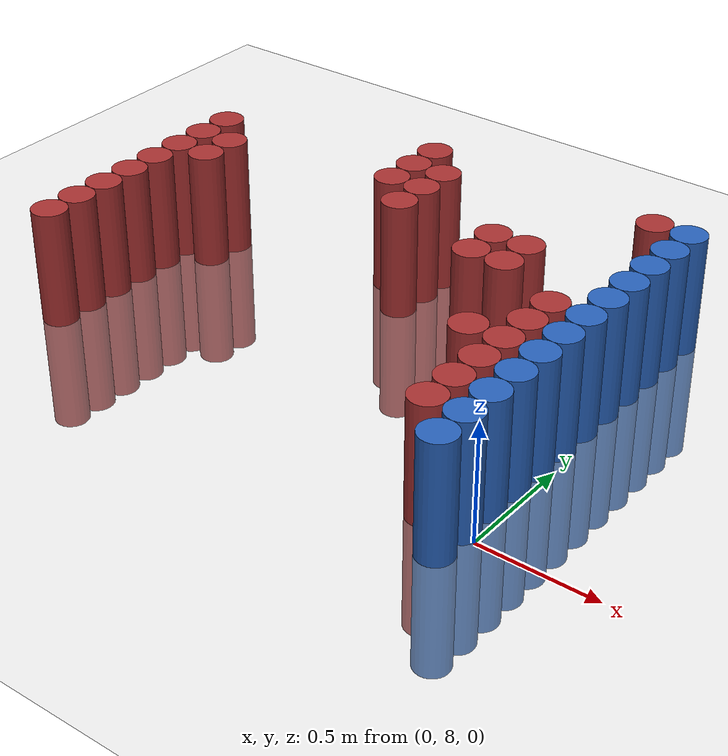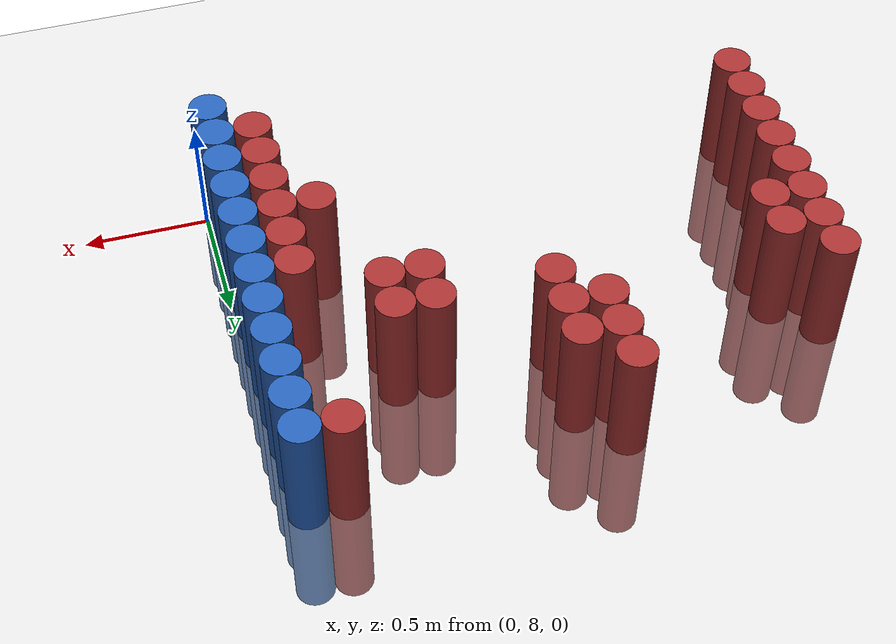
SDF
<sdf version="1.6">
 <world name="default">
  <model name="ground_plane">
   <static>1</static>
   <link name="link">
    <collision name="collision">
     <geometry><plane><normal>0 0 1</normal><size>100 100</size></plane></geometry>
     <surface><friction><ode><mu>100</mu><mu2>50</mu2></ode></friction></surface>
    </collision>
    <visual name="visual">
     <cast_shadows>0</cast_shadows>
     <geometry><plane><normal>0 0 1</normal><size>100 100</size></plane></geometry>
     <material>
      <script><uri>file://media/materials/scripts/gazebo.material</uri><name>Gazebo/Grey</name></script>
     </material>
    </visual>
   </link>
  </model>
  <model name="unit_cylinder_211">
   <static>1</static>
   <pose>-2.175000 8.175000 0.000000 0.000000 0.000000 0.000000</pose>
   <link name="link">
    <inertial>
     <mass>1</mass>
     <inertia><ixx>0.145833</ixx><ixy>0</ixy><ixz>0</ixz><iyy>0.145833</iyy><iyz>0</iyz><izz>0.125</izz></inertia>
    </inertial>
    <collision name="collision">
     <geometry><cylinder><radius>0.075000</radius><length>1</length></cylinder></geometry>
    </collision>
    <visual name="visual">
     <geometry><cylinder><radius>0.075000</radius><length>1</length></cylinder></geometry>
     <material>
      <ambient>0.648000 0.192000 0.192000 1</ambient>
      <diffuse>0.648000 0.192000 0.192000 1</diffuse>
     </material>
     <material>
      <script><name>Gazebo/Grey</name><uri>file://media/materials/scripts/gazebo.material</uri></script>
     </material>
    </visual>
    <sensor name="sensor_contact" type="contact"><contact><collision>collision</collision></contact></sensor>
   </link>
   <plugin filename="gz-sim-touchplugin-system" name="gz::sim::systems::TouchPlugin">
    <target>robot</target>
    <namespace>robot</namespace>
    <time>0.001</time>
    <enabled>true</enabled>
   </plugin>
  </model>
  <model name="unit_cylinder_212">
   <static>1</static>
   <pose>-2.175000 8.325000 0.000000 0.000000 0.000000 0.000000</pose>
   <link name="link">
    <inertial>
     <mass>1</mass>
     <inertia><ixx>0.145833</ixx><ixy>0</ixy><ixz>0</ixz><iyy>0.145833</iyy><iyz>0</iyz><izz>0.125</izz></inertia>
    </inertial>
    <collision name="collision">
     <geometry><cylinder><radius>0.075000</radius><length>1</length></cylinder></geometry>
    </collision>
    <visual name="visual">
     <geometry><cylinder><radius>0.075000</radius><length>1</length></cylinder></geometry>
     <material>
      <ambient>0.648000 0.192000 0.192000 1</ambient>
      <diffuse>0.648000 0.192000 0.192000 1</diffuse>
     </material>
     <material>
      <script><name>Gazebo/Grey</name><uri>file://media/materials/scripts/gazebo.material</uri></script>
     </material>
    </visual>
    <sensor name="sensor_contact" type="contact"><contact><collision>collision</collision></contact></sensor>
   </link>
   <plugin filename="gz-sim-touchplugin-system" name="gz::sim::systems::TouchPlugin">
    <target>robot</target>
    <namespace>robot</namespace>
    <time>0.001</time>
    <enabled>true</enabled>
   </plugin>
  </model>
  <model name="unit_cylinder_213">
   <static>1</static>
   <pose>-2.175000 8.475000 0.000000 0.000000 0.000000 0.000000</pose>
   <link name="link">
    <inertial>
     <mass>1</mass>
     <inertia><ixx>0.145833</ixx><ixy>0</ixy><ixz>0</ixz><iyy>0.145833</iyy><iyz>0</iyz><izz>0.125</izz></inertia>
    </inertial>
    <collision name="collision">
     <geometry><cylinder><radius>0.075000</radius><length>1</length></cylinder></geometry>
    </collision>
    <visual name="visual">
     <geometry><cylinder><radius>0.075000</radius><length>1</length></cylinder></geometry>
     <material>
      <ambient>0.648000 0.192000 0.192000 1</ambient>
      <diffuse>0.648000 0.192000 0.192000 1</diffuse>
     </material>
     <material>
      <script><name>Gazebo/Grey</name><uri>file://media/materials/scripts/gazebo.material</uri></script>
     </material>
    </visual>
    <sensor name="sensor_contact" type="contact"><contact><collision>collision</collision></contact></sensor>
   </link>
   <plugin filename="gz-sim-touchplugin-system" name="gz::sim::systems::TouchPlugin">
    <target>robot</target>
    <namespace>robot</namespace>
    <time>0.001</time>
    <enabled>true</enabled>
   </plugin>
  </model>
  <model name="unit_cylinder_214">
   <static>1</static>
   <pose>-2.175000 8.625000 0.000000 0.000000 0.000000 0.000000</pose>
   <link name="link">
    <inertial>
     <mass>1</mass>
     <inertia><ixx>0.145833</ixx><ixy>0</ixy><ixz>0</ixz><iyy>0.145833</iyy><iyz>0</iyz><izz>0.125</izz></inertia>
    </inertial>
    <collision name="collision">
     <geometry><cylinder><radius>0.075000</radius><length>1</length></cylinder></geometry>
    </collision>
    <visual name="visual">
     <geometry><cylinder><radius>0.075000</radius><length>1</length></cylinder></geometry>
     <material>
      <ambient>0.648000 0.192000 0.192000 1</ambient>
      <diffuse>0.648000 0.192000 0.192000 1</diffuse>
     </material>
     <material>
      <script><name>Gazebo/Grey</name><uri>file://media/materials/scripts/gazebo.material</uri></script>
     </material>
    </visual>
    <sensor name="sensor_contact" type="contact"><contact><collision>collision</collision></contact></sensor>
   </link>
   <plugin filename="gz-sim-touchplugin-system" name="gz::sim::systems::TouchPlugin">
    <target>robot</target>
    <namespace>robot</namespace>
    <time>0.001</time>
    <enabled>true</enabled>
   </plugin>
  </model>
  <model name="unit_cylinder_215">
   <static>1</static>
   <pose>-2.175000 8.775000 0.000000 0.000000 0.000000 0.000000</pose>
   <link name="link">
    <inertial>
     <mass>1</mass>
     <inertia><ixx>0.145833</ixx><ixy>0</ixy><ixz>0</ixz><iyy>0.145833</iyy><iyz>0</iyz><izz>0.125</izz></inertia>
    </inertial>
    <collision name="collision">
     <geometry><cylinder><radius>0.075000</radius><length>1</length></cylinder></geometry>
    </collision>
    <visual name="visual">
     <geometry><cylinder><radius>0.075000</radius><length>1</length></cylinder></geometry>
     <material>
      <ambient>0.648000 0.192000 0.192000 1</ambient>
      <diffuse>0.648000 0.192000 0.192000 1</diffuse>
     </material>
     <material>
      <script><name>Gazebo/Grey</name><uri>file://media/materials/scripts/gazebo.material</uri></script>
     </material>
    </visual>
    <sensor name="sensor_contact" type="contact"><contact><collision>collision</collision></contact></sensor>
   </link>
   <plugin filename="gz-sim-touchplugin-system" name="gz::sim::systems::TouchPlugin">
    <target>robot</target>
    <namespace>robot</namespace>
    <time>0.001</time>
    <enabled>true</enabled>
   </plugin>
  </model>
  <model name="unit_cylinder_216">
   <static>1</static>
   <pose>-2.175000 8.925000 0.000000 0.000000 0.000000 0.000000</pose>
   <link name="link">
    <inertial>
     <mass>1</mass>
     <inertia><ixx>0.145833</ixx><ixy>0</ixy><ixz>0</ixz><iyy>0.145833</iyy><iyz>0</iyz><izz>0.125</izz></inertia>
    </inertial>
    <collision name="collision">
     <geometry><cylinder><radius>0.075000</radius><length>1</length></cylinder></geometry>
    </collision>
    <visual name="visual">
     <geometry><cylinder><radius>0.075000</radius><length>1</length></cylinder></geometry>
     <material>
      <ambient>0.648000 0.192000 0.192000 1</ambient>
      <diffuse>0.648000 0.192000 0.192000 1</diffuse>
     </material>
     <material>
      <script><name>Gazebo/Grey</name><uri>file://media/materials/scripts/gazebo.material</uri></script>
     </material>
    </visual>
    <sensor name="sensor_contact" type="contact"><contact><collision>collision</collision></contact></sensor>
   </link>
   <plugin filename="gz-sim-touchplugin-system" name="gz::sim::systems::TouchPlugin">
    <target>robot</target>
    <namespace>robot</namespace>
    <time>0.001</time>
    <enabled>true</enabled>
   </plugin>
  </model>
  <model name="unit_cylinder_217">
   <static>1</static>
   <pose>-2.175000 9.075000 0.000000 0.000000 0.000000 0.000000</pose>
   <link name="link">
    <inertial>
     <mass>1</mass>
     <inertia><ixx>0.145833</ixx><ixy>0</ixy><ixz>0</ixz><iyy>0.145833</iyy><iyz>0</iyz><izz>0.125</izz></inertia>
    </inertial>
    <collision name="collision">
     <geometry><cylinder><radius>0.075000</radius><length>1</length></cylinder></geometry>
    </collision>
    <visual name="visual">
     <geometry><cylinder><radius>0.075000</radius><length>1</length></cylinder></geometry>
     <material>
      <ambient>0.648000 0.192000 0.192000 1</ambient>
      <diffuse>0.648000 0.192000 0.192000 1</diffuse>
     </material>
     <material>
      <script><name>Gazebo/Grey</name><uri>file://media/materials/scripts/gazebo.material</uri></script>
     </material>
    </visual>
    <sensor name="sensor_contact" type="contact"><contact><collision>collision</collision></contact></sensor>
   </link>
   <plugin filename="gz-sim-touchplugin-system" name="gz::sim::systems::TouchPlugin">
    <target>robot</target>
    <namespace>robot</namespace>
    <time>0.001</time>
    <enabled>true</enabled>
   </plugin>
  </model>
  <model name="unit_cylinder_218">
   <static>1</static>
   <pose>-2.175000 9.225000 0.000000 0.000000 0.000000 0.000000</pose>
   <link name="link">
    <inertial>
     <mass>1</mass>
     <inertia><ixx>0.145833</ixx><ixy>0</ixy><ixz>0</ixz><iyy>0.145833</iyy><iyz>0</iyz><izz>0.125</izz></inertia>
    </inertial>
    <collision name="collision">
     <geometry><cylinder><radius>0.075000</radius><length>1</length></cylinder></geometry>
    </collision>
    <visual name="visual">
     <geometry><cylinder><radius>0.075000</radius><length>1</length></cylinder></geometry>
     <material>
      <ambient>0.648000 0.192000 0.192000 1</ambient>
      <diffuse>0.648000 0.192000 0.192000 1</diffuse>
     </material>
     <material>
      <script><name>Gazebo/Grey</name><uri>file://media/materials/scripts/gazebo.material</uri></script>
     </material>
    </visual>
    <sensor name="sensor_contact" type="contact"><contact><collision>collision</collision></contact></sensor>
   </link>
   <plugin filename="gz-sim-touchplugin-system" name="gz::sim::systems::TouchPlugin">
    <target>robot</target>
    <namespace>robot</namespace>
    <time>0.001</time>
    <enabled>true</enabled>
   </plugin>
  </model>
  <model name="unit_cylinder_221">
   <static>1</static>
   <pose>-2.025000 8.925000 0.000000 0.000000 0.000000 0.000000</pose>
   <link name="link">
    <inertial>
     <mass>1</mass>
     <inertia><ixx>0.145833</ixx><ixy>0</ixy><ixz>0</ixz><iyy>0.145833</iyy><iyz>0</iyz><izz>0.125</izz></inertia>
    </inertial>
    <collision name="collision">
     <geometry><cylinder><radius>0.075000</radius><length>1</length></cylinder></geometry>
    </collision>
    <visual name="visual">
     <geometry><cylinder><radius>0.075000</radius><length>1</length></cylinder></geometry>
     <material>
      <ambient>0.648000 0.192000 0.192000 1</ambient>
      <diffuse>0.648000 0.192000 0.192000 1</diffuse>
     </material>
     <material>
      <script><name>Gazebo/Grey</name><uri>file://media/materials/scripts/gazebo.material</uri></script>
     </material>
    </visual>
    <sensor name="sensor_contact" type="contact"><contact><collision>collision</collision></contact></sensor>
   </link>
   <plugin filename="gz-sim-touchplugin-system" name="gz::sim::systems::TouchPlugin">
    <target>robot</target>
    <namespace>robot</namespace>
    <time>0.001</time>
    <enabled>true</enabled>
   </plugin>
  </model>
  <model name="unit_cylinder_222">
   <static>1</static>
   <pose>-2.025000 9.075000 0.000000 0.000000 0.000000 0.000000</pose>
   <link name="link">
    <inertial>
     <mass>1</mass>
     <inertia><ixx>0.145833</ixx><ixy>0</ixy><ixz>0</ixz><iyy>0.145833</iyy><iyz>0</iyz><izz>0.125</izz></inertia>
    </inertial>
    <collision name="collision">
     <geometry><cylinder><radius>0.075000</radius><length>1</length></cylinder></geometry>
    </collision>
    <visual name="visual">
     <geometry><cylinder><radius>0.075000</radius><length>1</length></cylinder></geometry>
     <material>
      <ambient>0.648000 0.192000 0.192000 1</ambient>
      <diffuse>0.648000 0.192000 0.192000 1</diffuse>
     </material>
     <material>
      <script><name>Gazebo/Grey</name><uri>file://media/materials/scripts/gazebo.material</uri></script>
     </material>
    </visual>
    <sensor name="sensor_contact" type="contact"><contact><collision>collision</collision></contact></sensor>
   </link>
   <plugin filename="gz-sim-touchplugin-system" name="gz::sim::systems::TouchPlugin">
    <target>robot</target>
    <namespace>robot</namespace>
    <time>0.001</time>
    <enabled>true</enabled>
   </plugin>
  </model>
  <model name="unit_cylinder_235">
   <static>1</static>
   <pose>-1.275000 9.225000 0.000000 0.000000 0.000000 0.000000</pose>
   <link name="link">
    <inertial>
     <mass>1</mass>
     <inertia><ixx>0.145833</ixx><ixy>0</ixy><ixz>0</ixz><iyy>0.145833</iyy><iyz>0</iyz><izz>0.125</izz></inertia>
    </inertial>
    <collision name="collision">
     <geometry><cylinder><radius>0.075000</radius><length>1</length></cylinder></geometry>
    </collision>
    <visual name="visual">
     <geometry><cylinder><radius>0.075000</radius><length>1</length></cylinder></geometry>
     <material>
      <ambient>0.648000 0.192000 0.192000 1</ambient>
      <diffuse>0.648000 0.192000 0.192000 1</diffuse>
     </material>
     <material>
      <script><name>Gazebo/Grey</name><uri>file://media/materials/scripts/gazebo.material</uri></script>
     </material>
    </visual>
    <sensor name="sensor_contact" type="contact"><contact><collision>collision</collision></contact></sensor>
   </link>
   <plugin filename="gz-sim-touchplugin-system" name="gz::sim::systems::TouchPlugin">
    <target>robot</target>
    <namespace>robot</namespace>
    <time>0.001</time>
    <enabled>true</enabled>
   </plugin>
  </model>
  <model name="unit_cylinder_236">
   <static>1</static>
   <pose>-1.275000 9.375000 0.000000 0.000000 0.000000 0.000000</pose>
   <link name="link">
    <inertial>
     <mass>1</mass>
     <inertia><ixx>0.145833</ixx><ixy>0</ixy><ixz>0</ixz><iyy>0.145833</iyy><iyz>0</iyz><izz>0.125</izz></inertia>
    </inertial>
    <collision name="collision">
     <geometry><cylinder><radius>0.075000</radius><length>1</length></cylinder></geometry>
    </collision>
    <visual name="visual">
     <geometry><cylinder><radius>0.075000</radius><length>1</length></cylinder></geometry>
     <material>
      <ambient>0.648000 0.192000 0.192000 1</ambient>
      <diffuse>0.648000 0.192000 0.192000 1</diffuse>
     </material>
     <material>
      <script><name>Gazebo/Grey</name><uri>file://media/materials/scripts/gazebo.material</uri></script>
     </material>
    </visual>
    <sensor name="sensor_contact" type="contact"><contact><collision>collision</collision></contact></sensor>
   </link>
   <plugin filename="gz-sim-touchplugin-system" name="gz::sim::systems::TouchPlugin">
    <target>robot</target>
    <namespace>robot</namespace>
    <time>0.001</time>
    <enabled>true</enabled>
   </plugin>
  </model>
  <model name="unit_cylinder_237">
   <static>1</static>
   <pose>-1.275000 9.525000 0.000000 0.000000 0.000000 0.000000</pose>
   <link name="link">
    <inertial>
     <mass>1</mass>
     <inertia><ixx>0.145833</ixx><ixy>0</ixy><ixz>0</ixz><iyy>0.145833</iyy><iyz>0</iyz><izz>0.125</izz></inertia>
    </inertial>
    <collision name="collision">
     <geometry><cylinder><radius>0.075000</radius><length>1</length></cylinder></geometry>
    </collision>
    <visual name="visual">
     <geometry><cylinder><radius>0.075000</radius><length>1</length></cylinder></geometry>
     <material>
      <ambient>0.648000 0.192000 0.192000 1</ambient>
      <diffuse>0.648000 0.192000 0.192000 1</diffuse>
     </material>
     <material>
      <script><name>Gazebo/Grey</name><uri>file://media/materials/scripts/gazebo.material</uri></script>
     </material>
    </visual>
    <sensor name="sensor_contact" type="contact"><contact><collision>collision</collision></contact></sensor>
   </link>
   <plugin filename="gz-sim-touchplugin-system" name="gz::sim::systems::TouchPlugin">
    <target>robot</target>
    <namespace>robot</namespace>
    <time>0.001</time>
    <enabled>true</enabled>
   </plugin>
  </model>
  <model name="unit_cylinder_244">
   <static>1</static>
   <pose>-1.125000 9.075000 0.000000 0.000000 0.000000 0.000000</pose>
   <link name="link">
    <inertial>
     <mass>1</mass>
     <inertia><ixx>0.145833</ixx><ixy>0</ixy><ixz>0</ixz><iyy>0.145833</iyy><iyz>0</iyz><izz>0.125</izz></inertia>
    </inertial>
    <collision name="collision">
     <geometry><cylinder><radius>0.075000</radius><length>1</length></cylinder></geometry>
    </collision>
    <visual name="visual">
     <geometry><cylinder><radius>0.075000</radius><length>1</length></cylinder></geometry>
     <material>
      <ambient>0.648000 0.192000 0.192000 1</ambient>
      <diffuse>0.648000 0.192000 0.192000 1</diffuse>
     </material>
     <material>
      <script><name>Gazebo/Grey</name><uri>file://media/materials/scripts/gazebo.material</uri></script>
     </material>
    </visual>
    <sensor name="sensor_contact" type="contact"><contact><collision>collision</collision></contact></sensor>
   </link>
   <plugin filename="gz-sim-touchplugin-system" name="gz::sim::systems::TouchPlugin">
    <target>robot</target>
    <namespace>robot</namespace>
    <time>0.001</time>
    <enabled>true</enabled>
   </plugin>
  </model>
  <model name="unit_cylinder_245">
   <static>1</static>
   <pose>-1.125000 9.225000 0.000000 0.000000 0.000000 0.000000</pose>
   <link name="link">
    <inertial>
     <mass>1</mass>
     <inertia><ixx>0.145833</ixx><ixy>0</ixy><ixz>0</ixz><iyy>0.145833</iyy><iyz>0</iyz><izz>0.125</izz></inertia>
    </inertial>
    <collision name="collision">
     <geometry><cylinder><radius>0.075000</radius><length>1</length></cylinder></geometry>
    </collision>
    <visual name="visual">
     <geometry><cylinder><radius>0.075000</radius><length>1</length></cylinder></geometry>
     <material>
      <ambient>0.648000 0.192000 0.192000 1</ambient>
      <diffuse>0.648000 0.192000 0.192000 1</diffuse>
     </material>
     <material>
      <script><name>Gazebo/Grey</name><uri>file://media/materials/scripts/gazebo.material</uri></script>
     </material>
    </visual>
    <sensor name="sensor_contact" type="contact"><contact><collision>collision</collision></contact></sensor>
   </link>
   <plugin filename="gz-sim-touchplugin-system" name="gz::sim::systems::TouchPlugin">
    <target>robot</target>
    <namespace>robot</namespace>
    <time>0.001</time>
    <enabled>true</enabled>
   </plugin>
  </model>
  <model name="unit_cylinder_246">
   <static>1</static>
   <pose>-1.125000 9.375000 0.000000 0.000000 0.000000 0.000000</pose>
   <link name="link">
    <inertial>
     <mass>1</mass>
     <inertia><ixx>0.145833</ixx><ixy>0</ixy><ixz>0</ixz><iyy>0.145833</iyy><iyz>0</iyz><izz>0.125</izz></inertia>
    </inertial>
    <collision name="collision">
     <geometry><cylinder><radius>0.075000</radius><length>1</length></cylinder></geometry>
    </collision>
    <visual name="visual">
     <geometry><cylinder><radius>0.075000</radius><length>1</length></cylinder></geometry>
     <material>
      <ambient>0.648000 0.192000 0.192000 1</ambient>
      <diffuse>0.648000 0.192000 0.192000 1</diffuse>
     </material>
     <material>
      <script><name>Gazebo/Grey</name><uri>file://media/materials/scripts/gazebo.material</uri></script>
     </material>
    </visual>
    <sensor name="sensor_contact" type="contact"><contact><collision>collision</collision></contact></sensor>
   </link>
   <plugin filename="gz-sim-touchplugin-system" name="gz::sim::systems::TouchPlugin">
    <target>robot</target>
    <namespace>robot</namespace>
    <time>0.001</time>
    <enabled>true</enabled>
   </plugin>
  </model>
  <model name="unit_cylinder_257">
   <static>1</static>
   <pose>-0.675000 8.925000 0.000000 0.000000 0.000000 0.000000</pose>
   <link name="link">
    <inertial>
     <mass>1</mass>
     <inertia><ixx>0.145833</ixx><ixy>0</ixy><ixz>0</ixz><iyy>0.145833</iyy><iyz>0</iyz><izz>0.125</izz></inertia>
    </inertial>
    <collision name="collision">
     <geometry><cylinder><radius>0.075000</radius><length>1</length></cylinder></geometry>
    </collision>
    <visual name="visual">
     <geometry><cylinder><radius>0.075000</radius><length>1</length></cylinder></geometry>
     <material>
      <ambient>0.648000 0.192000 0.192000 1</ambient>
      <diffuse>0.648000 0.192000 0.192000 1</diffuse>
     </material>
     <material>
      <script><name>Gazebo/Grey</name><uri>file://media/materials/scripts/gazebo.material</uri></script>
     </material>
    </visual>
    <sensor name="sensor_contact" type="contact"><contact><collision>collision</collision></contact></sensor>
   </link>
   <plugin filename="gz-sim-touchplugin-system" name="gz::sim::systems::TouchPlugin">
    <target>robot</target>
    <namespace>robot</namespace>
    <time>0.001</time>
    <enabled>true</enabled>
   </plugin>
  </model>
  <model name="unit_cylinder_258">
   <static>1</static>
   <pose>-0.675000 9.075000 0.000000 0.000000 0.000000 0.000000</pose>
   <link name="link">
    <inertial>
     <mass>1</mass>
     <inertia><ixx>0.145833</ixx><ixy>0</ixy><ixz>0</ixz><iyy>0.145833</iyy><iyz>0</iyz><izz>0.125</izz></inertia>
    </inertial>
    <collision name="collision">
     <geometry><cylinder><radius>0.075000</radius><length>1</length></cylinder></geometry>
    </collision>
    <visual name="visual">
     <geometry><cylinder><radius>0.075000</radius><length>1</length></cylinder></geometry>
     <material>
      <ambient>0.648000 0.192000 0.192000 1</ambient>
      <diffuse>0.648000 0.192000 0.192000 1</diffuse>
     </material>
     <material>
      <script><name>Gazebo/Grey</name><uri>file://media/materials/scripts/gazebo.material</uri></script>
     </material>
    </visual>
    <sensor name="sensor_contact" type="contact"><contact><collision>collision</collision></contact></sensor>
   </link>
   <plugin filename="gz-sim-touchplugin-system" name="gz::sim::systems::TouchPlugin">
    <target>robot</target>
    <namespace>robot</namespace>
    <time>0.001</time>
    <enabled>true</enabled>
   </plugin>
  </model>
  <model name="unit_cylinder_264">
   <static>1</static>
   <pose>-0.525000 8.925000 0.000000 0.000000 0.000000 0.000000</pose>
   <link name="link">
    <inertial>
     <mass>1</mass>
     <inertia><ixx>0.145833</ixx><ixy>0</ixy><ixz>0</ixz><iyy>0.145833</iyy><iyz>0</iyz><izz>0.125</izz></inertia>
    </inertial>
    <collision name="collision">
     <geometry><cylinder><radius>0.075000</radius><length>1</length></cylinder></geometry>
    </collision>
    <visual name="visual">
     <geometry><cylinder><radius>0.075000</radius><length>1</length></cylinder></geometry>
     <material>
      <ambient>0.648000 0.192000 0.192000 1</ambient>
      <diffuse>0.648000 0.192000 0.192000 1</diffuse>
     </material>
     <material>
      <script><name>Gazebo/Grey</name><uri>file://media/materials/scripts/gazebo.material</uri></script>
     </material>
    </visual>
    <sensor name="sensor_contact" type="contact"><contact><collision>collision</collision></contact></sensor>
   </link>
   <plugin filename="gz-sim-touchplugin-system" name="gz::sim::systems::TouchPlugin">
    <target>robot</target>
    <namespace>robot</namespace>
    <time>0.001</time>
    <enabled>true</enabled>
   </plugin>
  </model>
  <model name="unit_cylinder_265">
   <static>1</static>
   <pose>-0.525000 9.075000 0.000000 0.000000 0.000000 0.000000</pose>
   <link name="link">
    <inertial>
     <mass>1</mass>
     <inertia><ixx>0.145833</ixx><ixy>0</ixy><ixz>0</ixz><iyy>0.145833</iyy><iyz>0</iyz><izz>0.125</izz></inertia>
    </inertial>
    <collision name="collision">
     <geometry><cylinder><radius>0.075000</radius><length>1</length></cylinder></geometry>
    </collision>
    <visual name="visual">
     <geometry><cylinder><radius>0.075000</radius><length>1</length></cylinder></geometry>
     <material>
      <ambient>0.648000 0.192000 0.192000 1</ambient>
      <diffuse>0.648000 0.192000 0.192000 1</diffuse>
     </material>
     <material>
      <script><name>Gazebo/Grey</name><uri>file://media/materials/scripts/gazebo.material</uri></script>
     </material>
    </visual>
    <sensor name="sensor_contact" type="contact"><contact><collision>collision</collision></contact></sensor>
   </link>
   <plugin filename="gz-sim-touchplugin-system" name="gz::sim::systems::TouchPlugin">
    <target>robot</target>
    <namespace>robot</namespace>
    <time>0.001</time>
    <enabled>true</enabled>
   </plugin>
  </model>
  <model name="unit_cylinder_273">
   <static>1</static>
   <pose>-0.375000 8.475000 0.000000 0.000000 0.000000 0.000000</pose>
   <link name="link">
    <inertial>
     <mass>1</mass>
     <inertia><ixx>0.145833</ixx><ixy>0</ixy><ixz>0</ixz><iyy>0.145833</iyy><iyz>0</iyz><izz>0.125</izz></inertia>
    </inertial>
    <collision name="collision">
     <geometry><cylinder><radius>0.075000</radius><length>1</length></cylinder></geometry>
    </collision>
    <visual name="visual">
     <geometry><cylinder><radius>0.075000</radius><length>1</length></cylinder></geometry>
     <material>
      <ambient>0.648000 0.192000 0.192000 1</ambient>
      <diffuse>0.648000 0.192000 0.192000 1</diffuse>
     </material>
     <material>
      <script><name>Gazebo/Grey</name><uri>file://media/materials/scripts/gazebo.material</uri></script>
     </material>
    </visual>
    <sensor name="sensor_contact" type="contact"><contact><collision>collision</collision></contact></sensor>
   </link>
   <plugin filename="gz-sim-touchplugin-system" name="gz::sim::systems::TouchPlugin">
    <target>robot</target>
    <namespace>robot</namespace>
    <time>0.001</time>
    <enabled>true</enabled>
   </plugin>
  </model>
  <model name="unit_cylinder_280">
   <static>1</static>
   <pose>-0.225000 8.025000 0.000000 0.000000 0.000000 0.000000</pose>
   <link name="link">
    <inertial>
     <mass>1</mass>
     <inertia><ixx>0.145833</ixx><ixy>0</ixy><ixz>0</ixz><iyy>0.145833</iyy><iyz>0</iyz><izz>0.125</izz></inertia>
    </inertial>
    <collision name="collision">
     <geometry><cylinder><radius>0.075000</radius><length>1</length></cylinder></geometry>
    </collision>
    <visual name="visual">
     <geometry><cylinder><radius>0.075000</radius><length>1</length></cylinder></geometry>
     <material>
      <ambient>0.648000 0.192000 0.192000 1</ambient>
      <diffuse>0.648000 0.192000 0.192000 1</diffuse>
     </material>
     <material>
      <script><name>Gazebo/Grey</name><uri>file://media/materials/scripts/gazebo.material</uri></script>
     </material>
    </visual>
    <sensor name="sensor_contact" type="contact"><contact><collision>collision</collision></contact></sensor>
   </link>
   <plugin filename="gz-sim-touchplugin-system" name="gz::sim::systems::TouchPlugin">
    <target>robot</target>
    <namespace>robot</namespace>
    <time>0.001</time>
    <enabled>true</enabled>
   </plugin>
  </model>
  <model name="unit_cylinder_281">
   <static>1</static>
   <pose>-0.225000 8.175000 0.000000 0.000000 0.000000 0.000000</pose>
   <link name="link">
    <inertial>
     <mass>1</mass>
     <inertia><ixx>0.145833</ixx><ixy>0</ixy><ixz>0</ixz><iyy>0.145833</iyy><iyz>0</iyz><izz>0.125</izz></inertia>
    </inertial>
    <collision name="collision">
     <geometry><cylinder><radius>0.075000</radius><length>1</length></cylinder></geometry>
    </collision>
    <visual name="visual">
     <geometry><cylinder><radius>0.075000</radius><length>1</length></cylinder></geometry>
     <material>
      <ambient>0.648000 0.192000 0.192000 1</ambient>
      <diffuse>0.648000 0.192000 0.192000 1</diffuse>
     </material>
     <material>
      <script><name>Gazebo/Grey</name><uri>file://media/materials/scripts/gazebo.material</uri></script>
     </material>
    </visual>
    <sensor name="sensor_contact" type="contact"><contact><collision>collision</collision></contact></sensor>
   </link>
   <plugin filename="gz-sim-touchplugin-system" name="gz::sim::systems::TouchPlugin">
    <target>robot</target>
    <namespace>robot</namespace>
    <time>0.001</time>
    <enabled>true</enabled>
   </plugin>
  </model>
  <model name="unit_cylinder_282">
   <static>1</static>
   <pose>-0.225000 8.325000 0.000000 0.000000 0.000000 0.000000</pose>
   <link name="link">
    <inertial>
     <mass>1</mass>
     <inertia><ixx>0.145833</ixx><ixy>0</ixy><ixz>0</ixz><iyy>0.145833</iyy><iyz>0</iyz><izz>0.125</izz></inertia>
    </inertial>
    <collision name="collision">
     <geometry><cylinder><radius>0.075000</radius><length>1</length></cylinder></geometry>
    </collision>
    <visual name="visual">
     <geometry><cylinder><radius>0.075000</radius><length>1</length></cylinder></geometry>
     <material>
      <ambient>0.648000 0.192000 0.192000 1</ambient>
      <diffuse>0.648000 0.192000 0.192000 1</diffuse>
     </material>
     <material>
      <script><name>Gazebo/Grey</name><uri>file://media/materials/scripts/gazebo.material</uri></script>
     </material>
    </visual>
    <sensor name="sensor_contact" type="contact"><contact><collision>collision</collision></contact></sensor>
   </link>
   <plugin filename="gz-sim-touchplugin-system" name="gz::sim::systems::TouchPlugin">
    <target>robot</target>
    <namespace>robot</namespace>
    <time>0.001</time>
    <enabled>true</enabled>
   </plugin>
  </model>
  <model name="unit_cylinder_283">
   <static>1</static>
   <pose>-0.225000 8.475000 0.000000 0.000000 0.000000 0.000000</pose>
   <link name="link">
    <inertial>
     <mass>1</mass>
     <inertia><ixx>0.145833</ixx><ixy>0</ixy><ixz>0</ixz><iyy>0.145833</iyy><iyz>0</iyz><izz>0.125</izz></inertia>
    </inertial>
    <collision name="collision">
     <geometry><cylinder><radius>0.075000</radius><length>1</length></cylinder></geometry>
    </collision>
    <visual name="visual">
     <geometry><cylinder><radius>0.075000</radius><length>1</length></cylinder></geometry>
     <material>
      <ambient>0.648000 0.192000 0.192000 1</ambient>
      <diffuse>0.648000 0.192000 0.192000 1</diffuse>
     </material>
     <material>
      <script><name>Gazebo/Grey</name><uri>file://media/materials/scripts/gazebo.material</uri></script>
     </material>
    </visual>
    <sensor name="sensor_contact" type="contact"><contact><collision>collision</collision></contact></sensor>
   </link>
   <plugin filename="gz-sim-touchplugin-system" name="gz::sim::systems::TouchPlugin">
    <target>robot</target>
    <namespace>robot</namespace>
    <time>0.001</time>
    <enabled>true</enabled>
   </plugin>
  </model>
  <model name="unit_cylinder_284">
   <static>1</static>
   <pose>-0.225000 8.625000 0.000000 0.000000 0.000000 0.000000</pose>
   <link name="link">
    <inertial>
     <mass>1</mass>
     <inertia><ixx>0.145833</ixx><ixy>0</ixy><ixz>0</ixz><iyy>0.145833</iyy><iyz>0</iyz><izz>0.125</izz></inertia>
    </inertial>
    <collision name="collision">
     <geometry><cylinder><radius>0.075000</radius><length>1</length></cylinder></geometry>
    </collision>
    <visual name="visual">
     <geometry><cylinder><radius>0.075000</radius><length>1</length></cylinder></geometry>
     <material>
      <ambient>0.648000 0.192000 0.192000 1</ambient>
      <diffuse>0.648000 0.192000 0.192000 1</diffuse>
     </material>
     <material>
      <script><name>Gazebo/Grey</name><uri>file://media/materials/scripts/gazebo.material</uri></script>
     </material>
    </visual>
    <sensor name="sensor_contact" type="contact"><contact><collision>collision</collision></contact></sensor>
   </link>
   <plugin filename="gz-sim-touchplugin-system" name="gz::sim::systems::TouchPlugin">
    <target>robot</target>
    <namespace>robot</namespace>
    <time>0.001</time>
    <enabled>true</enabled>
   </plugin>
  </model>
  <model name="unit_cylinder_285">
   <static>1</static>
   <pose>-0.225000 8.775000 0.000000 0.000000 0.000000 0.000000</pose>
   <link name="link">
    <inertial>
     <mass>1</mass>
     <inertia><ixx>0.145833</ixx><ixy>0</ixy><ixz>0</ixz><iyy>0.145833</iyy><iyz>0</iyz><izz>0.125</izz></inertia>
    </inertial>
    <collision name="collision">
     <geometry><cylinder><radius>0.075000</radius><length>1</length></cylinder></geometry>
    </collision>
    <visual name="visual">
     <geometry><cylinder><radius>0.075000</radius><length>1</length></cylinder></geometry>
     <material>
      <ambient>0.648000 0.192000 0.192000 1</ambient>
      <diffuse>0.648000 0.192000 0.192000 1</diffuse>
     </material>
     <material>
      <script><name>Gazebo/Grey</name><uri>file://media/materials/scripts/gazebo.material</uri></script>
     </material>
    </visual>
    <sensor name="sensor_contact" type="contact"><contact><collision>collision</collision></contact></sensor>
   </link>
   <plugin filename="gz-sim-touchplugin-system" name="gz::sim::systems::TouchPlugin">
    <target>robot</target>
    <namespace>robot</namespace>
    <time>0.001</time>
    <enabled>true</enabled>
   </plugin>
  </model>
  <model name="unit_cylinder_286">
   <static>1</static>
   <pose>-0.225000 9.525000 0.000000 0.000000 0.000000 0.000000</pose>
   <link name="link">
    <inertial>
     <mass>1</mass>
     <inertia><ixx>0.145833</ixx><ixy>0</ixy><ixz>0</ixz><iyy>0.145833</iyy><iyz>0</iyz><izz>0.125</izz></inertia>
    </inertial>
    <collision name="collision">
     <geometry><cylinder><radius>0.075000</radius><length>1</length></cylinder></geometry>
    </collision>
    <visual name="visual">
     <geometry><cylinder><radius>0.075000</radius><length>1</length></cylinder></geometry>
     <material>
      <ambient>0.648000 0.192000 0.192000 1</ambient>
      <diffuse>0.648000 0.192000 0.192000 1</diffuse>
     </material>
     <material>
      <script><name>Gazebo/Grey</name><uri>file://media/materials/scripts/gazebo.material</uri></script>
     </material>
    </visual>
    <sensor name="sensor_contact" type="contact"><contact><collision>collision</collision></contact></sensor>
   </link>
   <plugin filename="gz-sim-touchplugin-system" name="gz::sim::systems::TouchPlugin">
    <target>robot</target>
    <namespace>robot</namespace>
    <time>0.001</time>
    <enabled>true</enabled>
   </plugin>
  </model>
  <model name="unit_cylinder_305">
   <static>1</static>
   <pose>-0.075000 7.875000 0.000000 0.000000 0.000000 0.000000</pose>
   <link name="link">
    <inertial>
     <mass>1</mass>
     <inertia><ixx>0.145833</ixx><ixy>0</ixy><ixz>0</ixz><iyy>0.145833</iyy><iyz>0</iyz><izz>0.125</izz></inertia>
    </inertial>
    <collision name="collision">
     <geometry><cylinder><radius>0.075000</radius><length>1</length></cylinder></geometry>
    </collision>
    <visual name="visual">
     <geometry><cylinder><radius>0.075000</radius><length>1</length></cylinder></geometry>
     <material>
      <ambient>0.152000 0.379000 0.720000 1</ambient>
      <diffuse>0.152000 0.379000 0.720000 1</diffuse>
     </material>
     <material>
      <script><name>Gazebo/Grey</name><uri>file://media/materials/scripts/gazebo.material</uri></script>
     </material>
    </visual>
    <sensor name="sensor_contact" type="contact"><contact><collision>collision</collision></contact></sensor>
   </link>
   <plugin filename="gz-sim-touchplugin-system" name="gz::sim::systems::TouchPlugin">
    <target>robot</target>
    <namespace>robot</namespace>
    <time>0.001</time>
    <enabled>true</enabled>
   </plugin>
  </model>
  <model name="unit_cylinder_306">
   <static>1</static>
   <pose>-0.075000 8.025000 0.000000 0.000000 0.000000 0.000000</pose>
   <link name="link">
    <inertial>
     <mass>1</mass>
     <inertia><ixx>0.145833</ixx><ixy>0</ixy><ixz>0</ixz><iyy>0.145833</iyy><iyz>0</iyz><izz>0.125</izz></inertia>
    </inertial>
    <collision name="collision">
     <geometry><cylinder><radius>0.075000</radius><length>1</length></cylinder></geometry>
    </collision>
    <visual name="visual">
     <geometry><cylinder><radius>0.075000</radius><length>1</length></cylinder></geometry>
     <material>
      <ambient>0.152000 0.379000 0.720000 1</ambient>
      <diffuse>0.152000 0.379000 0.720000 1</diffuse>
     </material>
     <material>
      <script><name>Gazebo/Grey</name><uri>file://media/materials/scripts/gazebo.material</uri></script>
     </material>
    </visual>
    <sensor name="sensor_contact" type="contact"><contact><collision>collision</collision></contact></sensor>
   </link>
   <plugin filename="gz-sim-touchplugin-system" name="gz::sim::systems::TouchPlugin">
    <target>robot</target>
    <namespace>robot</namespace>
    <time>0.001</time>
    <enabled>true</enabled>
   </plugin>
  </model>
  <model name="unit_cylinder_307">
   <static>1</static>
   <pose>-0.075000 8.175000 0.000000 0.000000 0.000000 0.000000</pose>
   <link name="link">
    <inertial>
     <mass>1</mass>
     <inertia><ixx>0.145833</ixx><ixy>0</ixy><ixz>0</ixz><iyy>0.145833</iyy><iyz>0</iyz><izz>0.125</izz></inertia>
    </inertial>
    <collision name="collision">
     <geometry><cylinder><radius>0.075000</radius><length>1</length></cylinder></geometry>
    </collision>
    <visual name="visual">
     <geometry><cylinder><radius>0.075000</radius><length>1</length></cylinder></geometry>
     <material>
      <ambient>0.152000 0.379000 0.720000 1</ambient>
      <diffuse>0.152000 0.379000 0.720000 1</diffuse>
     </material>
     <material>
      <script><name>Gazebo/Grey</name><uri>file://media/materials/scripts/gazebo.material</uri></script>
     </material>
    </visual>
    <sensor name="sensor_contact" type="contact"><contact><collision>collision</collision></contact></sensor>
   </link>
   <plugin filename="gz-sim-touchplugin-system" name="gz::sim::systems::TouchPlugin">
    <target>robot</target>
    <namespace>robot</namespace>
    <time>0.001</time>
    <enabled>true</enabled>
   </plugin>
  </model>
  <model name="unit_cylinder_308">
   <static>1</static>
   <pose>-0.075000 8.325000 0.000000 0.000000 0.000000 0.000000</pose>
   <link name="link">
    <inertial>
     <mass>1</mass>
     <inertia><ixx>0.145833</ixx><ixy>0</ixy><ixz>0</ixz><iyy>0.145833</iyy><iyz>0</iyz><izz>0.125</izz></inertia>
    </inertial>
    <collision name="collision">
     <geometry><cylinder><radius>0.075000</radius><length>1</length></cylinder></geometry>
    </collision>
    <visual name="visual">
     <geometry><cylinder><radius>0.075000</radius><length>1</length></cylinder></geometry>
     <material>
      <ambient>0.152000 0.379000 0.720000 1</ambient>
      <diffuse>0.152000 0.379000 0.720000 1</diffuse>
     </material>
     <material>
      <script><name>Gazebo/Grey</name><uri>file://media/materials/scripts/gazebo.material</uri></script>
     </material>
    </visual>
    <sensor name="sensor_contact" type="contact"><contact><collision>collision</collision></contact></sensor>
   </link>
   <plugin filename="gz-sim-touchplugin-system" name="gz::sim::systems::TouchPlugin">
    <target>robot</target>
    <namespace>robot</namespace>
    <time>0.001</time>
    <enabled>true</enabled>
   </plugin>
  </model>
  <model name="unit_cylinder_309">
   <static>1</static>
   <pose>-0.075000 8.475000 0.000000 0.000000 0.000000 0.000000</pose>
   <link name="link">
    <inertial>
     <mass>1</mass>
     <inertia><ixx>0.145833</ixx><ixy>0</ixy><ixz>0</ixz><iyy>0.145833</iyy><iyz>0</iyz><izz>0.125</izz></inertia>
    </inertial>
    <collision name="collision">
     <geometry><cylinder><radius>0.075000</radius><length>1</length></cylinder></geometry>
    </collision>
    <visual name="visual">
     <geometry><cylinder><radius>0.075000</radius><length>1</length></cylinder></geometry>
     <material>
      <ambient>0.152000 0.379000 0.720000 1</ambient>
      <diffuse>0.152000 0.379000 0.720000 1</diffuse>
     </material>
     <material>
      <script><name>Gazebo/Grey</name><uri>file://media/materials/scripts/gazebo.material</uri></script>
     </material>
    </visual>
    <sensor name="sensor_contact" type="contact"><contact><collision>collision</collision></contact></sensor>
   </link>
   <plugin filename="gz-sim-touchplugin-system" name="gz::sim::systems::TouchPlugin">
    <target>robot</target>
    <namespace>robot</namespace>
    <time>0.001</time>
    <enabled>true</enabled>
   </plugin>
  </model>
  <model name="unit_cylinder_310">
   <static>1</static>
   <pose>-0.075000 8.625000 0.000000 0.000000 0.000000 0.000000</pose>
   <link name="link">
    <inertial>
     <mass>1</mass>
     <inertia><ixx>0.145833</ixx><ixy>0</ixy><ixz>0</ixz><iyy>0.145833</iyy><iyz>0</iyz><izz>0.125</izz></inertia>
    </inertial>
    <collision name="collision">
     <geometry><cylinder><radius>0.075000</radius><length>1</length></cylinder></geometry>
    </collision>
    <visual name="visual">
     <geometry><cylinder><radius>0.075000</radius><length>1</length></cylinder></geometry>
     <material>
      <ambient>0.152000 0.379000 0.720000 1</ambient>
      <diffuse>0.152000 0.379000 0.720000 1</diffuse>
     </material>
     <material>
      <script><name>Gazebo/Grey</name><uri>file://media/materials/scripts/gazebo.material</uri></script>
     </material>
    </visual>
    <sensor name="sensor_contact" type="contact"><contact><collision>collision</collision></contact></sensor>
   </link>
   <plugin filename="gz-sim-touchplugin-system" name="gz::sim::systems::TouchPlugin">
    <target>robot</target>
    <namespace>robot</namespace>
    <time>0.001</time>
    <enabled>true</enabled>
   </plugin>
  </model>
  <model name="unit_cylinder_311">
   <static>1</static>
   <pose>-0.075000 8.775000 0.000000 0.000000 0.000000 0.000000</pose>
   <link name="link">
    <inertial>
     <mass>1</mass>
     <inertia><ixx>0.145833</ixx><ixy>0</ixy><ixz>0</ixz><iyy>0.145833</iyy><iyz>0</iyz><izz>0.125</izz></inertia>
    </inertial>
    <collision name="collision">
     <geometry><cylinder><radius>0.075000</radius><length>1</length></cylinder></geometry>
    </collision>
    <visual name="visual">
     <geometry><cylinder><radius>0.075000</radius><length>1</length></cylinder></geometry>
     <material>
      <ambient>0.152000 0.379000 0.720000 1</ambient>
      <diffuse>0.152000 0.379000 0.720000 1</diffuse>
     </material>
     <material>
      <script><name>Gazebo/Grey</name><uri>file://media/materials/scripts/gazebo.material</uri></script>
     </material>
    </visual>
    <sensor name="sensor_contact" type="contact"><contact><collision>collision</collision></contact></sensor>
   </link>
   <plugin filename="gz-sim-touchplugin-system" name="gz::sim::systems::TouchPlugin">
    <target>robot</target>
    <namespace>robot</namespace>
    <time>0.001</time>
    <enabled>true</enabled>
   </plugin>
  </model>
  <model name="unit_cylinder_312">
   <static>1</static>
   <pose>-0.075000 8.925000 0.000000 0.000000 0.000000 0.000000</pose>
   <link name="link">
    <inertial>
     <mass>1</mass>
     <inertia><ixx>0.145833</ixx><ixy>0</ixy><ixz>0</ixz><iyy>0.145833</iyy><iyz>0</iyz><izz>0.125</izz></inertia>
    </inertial>
    <collision name="collision">
     <geometry><cylinder><radius>0.075000</radius><length>1</length></cylinder></geometry>
    </collision>
    <visual name="visual">
     <geometry><cylinder><radius>0.075000</radius><length>1</length></cylinder></geometry>
     <material>
      <ambient>0.152000 0.379000 0.720000 1</ambient>
      <diffuse>0.152000 0.379000 0.720000 1</diffuse>
     </material>
     <material>
      <script><name>Gazebo/Grey</name><uri>file://media/materials/scripts/gazebo.material</uri></script>
     </material>
    </visual>
    <sensor name="sensor_contact" type="contact"><contact><collision>collision</collision></contact></sensor>
   </link>
   <plugin filename="gz-sim-touchplugin-system" name="gz::sim::systems::TouchPlugin">
    <target>robot</target>
    <namespace>robot</namespace>
    <time>0.001</time>
    <enabled>true</enabled>
   </plugin>
  </model>
  <model name="unit_cylinder_313">
   <static>1</static>
   <pose>-0.075000 9.075000 0.000000 0.000000 0.000000 0.000000</pose>
   <link name="link">
    <inertial>
     <mass>1</mass>
     <inertia><ixx>0.145833</ixx><ixy>0</ixy><ixz>0</ixz><iyy>0.145833</iyy><iyz>0</iyz><izz>0.125</izz></inertia>
    </inertial>
    <collision name="collision">
     <geometry><cylinder><radius>0.075000</radius><length>1</length></cylinder></geometry>
    </collision>
    <visual name="visual">
     <geometry><cylinder><radius>0.075000</radius><length>1</length></cylinder></geometry>
     <material>
      <ambient>0.152000 0.379000 0.720000 1</ambient>
      <diffuse>0.152000 0.379000 0.720000 1</diffuse>
     </material>
     <material>
      <script><name>Gazebo/Grey</name><uri>file://media/materials/scripts/gazebo.material</uri></script>
     </material>
    </visual>
    <sensor name="sensor_contact" type="contact"><contact><collision>collision</collision></contact></sensor>
   </link>
   <plugin filename="gz-sim-touchplugin-system" name="gz::sim::systems::TouchPlugin">
    <target>robot</target>
    <namespace>robot</namespace>
    <time>0.001</time>
    <enabled>true</enabled>
   </plugin>
  </model>
  <model name="unit_cylinder_314">
   <static>1</static>
   <pose>-0.075000 9.225000 0.000000 0.000000 0.000000 0.000000</pose>
   <link name="link">
    <inertial>
     <mass>1</mass>
     <inertia><ixx>0.145833</ixx><ixy>0</ixy><ixz>0</ixz><iyy>0.145833</iyy><iyz>0</iyz><izz>0.125</izz></inertia>
    </inertial>
    <collision name="collision">
     <geometry><cylinder><radius>0.075000</radius><length>1</length></cylinder></geometry>
    </collision>
    <visual name="visual">
     <geometry><cylinder><radius>0.075000</radius><length>1</length></cylinder></geometry>
     <material>
      <ambient>0.152000 0.379000 0.720000 1</ambient>
      <diffuse>0.152000 0.379000 0.720000 1</diffuse>
     </material>
     <material>
      <script><name>Gazebo/Grey</name><uri>file://media/materials/scripts/gazebo.material</uri></script>
     </material>
    </visual>
    <sensor name="sensor_contact" type="contact"><contact><collision>collision</collision></contact></sensor>
   </link>
   <plugin filename="gz-sim-touchplugin-system" name="gz::sim::systems::TouchPlugin">
    <target>robot</target>
    <namespace>robot</namespace>
    <time>0.001</time>
    <enabled>true</enabled>
   </plugin>
  </model>
  <model name="unit_cylinder_315">
   <static>1</static>
   <pose>-0.075000 9.375000 0.000000 0.000000 0.000000 0.000000</pose>
   <link name="link">
    <inertial>
     <mass>1</mass>
     <inertia><ixx>0.145833</ixx><ixy>0</ixy><ixz>0</ixz><iyy>0.145833</iyy><iyz>0</iyz><izz>0.125</izz></inertia>
    </inertial>
    <collision name="collision">
     <geometry><cylinder><radius>0.075000</radius><length>1</length></cylinder></geometry>
    </collision>
    <visual name="visual">
     <geometry><cylinder><radius>0.075000</radius><length>1</length></cylinder></geometry>
     <material>
      <ambient>0.152000 0.379000 0.720000 1</ambient>
      <diffuse>0.152000 0.379000 0.720000 1</diffuse>
     </material>
     <material>
      <script><name>Gazebo/Grey</name><uri>file://media/materials/scripts/gazebo.material</uri></script>
     </material>
    </visual>
    <sensor name="sensor_contact" type="contact"><contact><collision>collision</collision></contact></sensor>
   </link>
   <plugin filename="gz-sim-touchplugin-system" name="gz::sim::systems::TouchPlugin">
    <target>robot</target>
    <namespace>robot</namespace>
    <time>0.001</time>
    <enabled>true</enabled>
   </plugin>
  </model>
  <model name="unit_cylinder_316">
   <static>1</static>
   <pose>-0.075000 9.525000 0.000000 0.000000 0.000000 0.000000</pose>
   <link name="link">
    <inertial>
     <mass>1</mass>
     <inertia><ixx>0.145833</ixx><ixy>0</ixy><ixz>0</ixz><iyy>0.145833</iyy><iyz>0</iyz><izz>0.125</izz></inertia>
    </inertial>
    <collision name="collision">
     <geometry><cylinder><radius>0.075000</radius><length>1</length></cylinder></geometry>
    </collision>
    <visual name="visual">
     <geometry><cylinder><radius>0.075000</radius><length>1</length></cylinder></geometry>
     <material>
      <ambient>0.152000 0.379000 0.720000 1</ambient>
      <diffuse>0.152000 0.379000 0.720000 1</diffuse>
     </material>
     <material>
      <script><name>Gazebo/Grey</name><uri>file://media/materials/scripts/gazebo.material</uri></script>
     </material>
    </visual>
    <sensor name="sensor_contact" type="contact"><contact><collision>collision</collision></contact></sensor>
   </link>
   <plugin filename="gz-sim-touchplugin-system" name="gz::sim::systems::TouchPlugin">
    <target>robot</target>
    <namespace>robot</namespace>
    <time>0.001</time>
    <enabled>true</enabled>
   </plugin>
  </model>
 </world>
</sdf>
